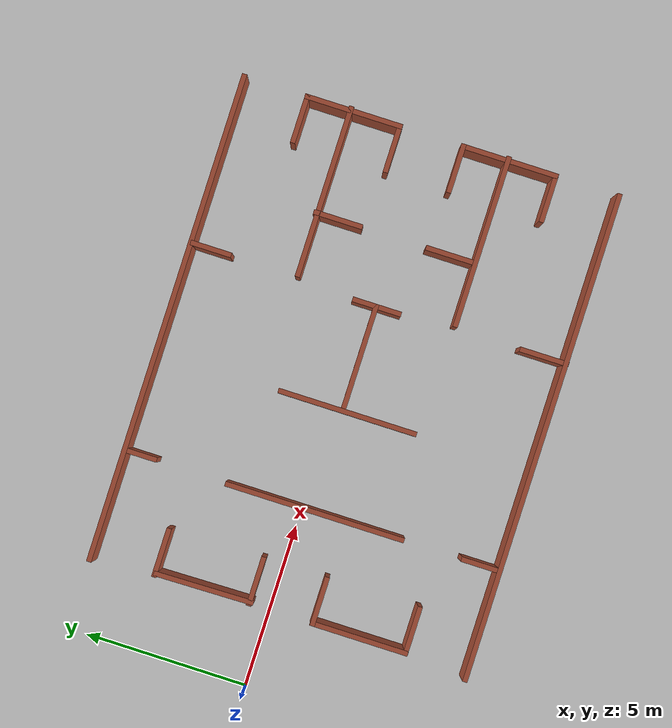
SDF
<sdf version="1.6">
 <world name="default">
  <light name="sun" type="directional">
   <pose>0 0 10 0 -0 0</pose>
   <diffuse>0.8 0.8 0.8 1</diffuse>
   <specular>0.1 0.1 0.1 1</specular>
   <attenuation>
    <range>1000</range>
    <constant>0.9</constant>
    <linear>0.01</linear>
    <quadratic>0.001</quadratic>
   </attenuation>
   <direction>-0.5 0.5 -1</direction>
  </light>
  <model name="ground_plane">
   <static>1</static>
   <link name="link">
    <collision name="collision">
     <geometry><plane><normal>0 0 1</normal><size>100 100</size></plane></geometry>
     <surface><friction><ode><mu>100</mu><mu2>50</mu2></ode></friction></surface>
    </collision>
    <visual name="visual">
     <cast_shadows>0</cast_shadows>
     <geometry><plane><normal>0 0 1</normal><size>100 100</size></plane></geometry>
     <material>
      <script><uri>file://media/materials/scripts/gazebo.material</uri><name>Gazebo/Grey</name></script>
     </material>
    </visual>
   </link>
  </model>
  <gravity>0 0 -9.8</gravity>
  <magnetic_field>6e-06 2.3e-05 -4.2e-05</magnetic_field>
  <atmosphere type="adiabatic"/>
  <physics name="default_physics" default="0" type="ode">
   <max_step_size>0.001</max_step_size>
   <real_time_factor>1</real_time_factor>
   <real_time_update_rate>1000</real_time_update_rate>
  </physics>
  <scene><ambient>0.4 0.4 0.4 1</ambient><background>0.7 0.7 0.7 1</background><shadows>1</shadows></scene>
  <spherical_coordinates>
   <surface_model>EARTH_WGS84</surface_model>
   <latitude_deg>0</latitude_deg>
   <longitude_deg>0</longitude_deg>
   <elevation>0</elevation>
   <heading_deg>0</heading_deg>
  </spherical_coordinates>
  <model name="jianjian_maze_0">
   <pose>9.77633 -0.318049 0 0 -0 0</pose>
   <link name="Wall_100">
    <collision name="Wall_100_Collision">
     <geometry><box><size>5.25 0.15 2.5</size></box></geometry>
     <pose>0 0 1.25 0 -0 0</pose>
    </collision>
    <visual name="Wall_100_Visual">
     <pose>0 0 1.25 0 -0 0</pose>
     <geometry><box><size>5.25 0.15 2.5</size></box></geometry>
     <material>
      <script><uri>file://media/materials/scripts/gazebo.material</uri><name>Gazebo/Bricks</name></script>
      <ambient>1 1 1 1</ambient>
     </material>
    </visual>
    <pose>4.90208 2.5027 0 0 -0 3.14159</pose>
   </link>
   <link name="Wall_102">
    <collision name="Wall_102_Collision">
     <geometry><box><size>5.25 0.15 2.5</size></box></geometry>
     <pose>0 0 1.25 0 -0 0</pose>
    </collision>
    <visual name="Wall_102_Visual">
     <pose>0 0 1.25 0 -0 0</pose>
     <geometry><box><size>5.25 0.15 2.5</size></box></geometry>
     <material>
      <script><uri>file://media/materials/scripts/gazebo.material</uri><name>Gazebo/Bricks</name></script>
      <ambient>1 1 1 1</ambient>
     </material>
    </visual>
    <pose>4.90208 -2.3473 0 0 -0 0</pose>
   </link>
   <link name="Wall_104">
    <collision name="Wall_104_Collision">
     <geometry><box><size>1.5 0.15 2.5</size></box></geometry>
     <pose>0 0 1.25 0 -0 0</pose>
    </collision>
    <visual name="Wall_104_Visual">
     <pose>0 0 1.25 0 -0 0</pose>
     <geometry><box><size>1.5 0.15 2.5</size></box></geometry>
     <material>
      <script><uri>file://media/materials/scripts/gazebo.material</uri><name>Gazebo/Bricks</name></script>
      <ambient>1 1 1 1</ambient>
     </material>
    </visual>
    <pose>4.24193 1.87423 0 0 0 -1.5708</pose>
   </link>
   <link name="Wall_106">
    <collision name="Wall_106_Collision">
     <geometry><box><size>1.5 0.15 2.5</size></box></geometry>
     <pose>0 0 1.25 0 -0 0</pose>
    </collision>
    <visual name="Wall_106_Visual">
     <pose>0 0 1.25 0 -0 0</pose>
     <geometry><box><size>1.5 0.15 2.5</size></box></geometry>
     <material>
      <script><uri>file://media/materials/scripts/gazebo.material</uri><name>Gazebo/Bricks</name></script>
      <ambient>1 1 1 1</ambient>
     </material>
    </visual>
    <pose>4.24193 -1.57577 0 0 0 -1.5708</pose>
   </link>
   <link name="Wall_108">
    <collision name="Wall_108_Collision">
     <geometry><box><size>1.25 0.15 2.5</size></box></geometry>
     <pose>0 0 1.25 0 -0 0</pose>
    </collision>
    <visual name="Wall_108_Visual">
     <pose>0 0 1.25 0 -0 0</pose>
     <geometry><box><size>1.25 0.15 2.5</size></box></geometry>
     <material>
      <script><uri>file://media/materials/scripts/gazebo.material</uri><name>Gazebo/Bricks</name></script>
      <ambient>1 1 1 1</ambient>
     </material>
    </visual>
    <pose>2.28793 5.16285 0 0 0 -1.5708</pose>
   </link>
   <link name="Wall_114">
    <collision name="Wall_114_Collision">
     <geometry><box><size>1.5 0.15 2.5</size></box></geometry>
     <pose>0 0 1.25 0 -0 0</pose>
    </collision>
    <visual name="Wall_114_Visual">
     <pose>0 0 1.25 0 -0 0</pose>
     <geometry><box><size>1.5 0.15 2.5</size></box></geometry>
     <material>
      <script><uri>file://media/materials/scripts/gazebo.material</uri><name>Gazebo/Bricks</name></script>
      <ambient>1 1 1 1</ambient>
     </material>
    </visual>
    <pose>2.2414 -5.10436 0 0 0 -1.5708</pose>
   </link>
   <link name="Wall_116">
    <collision name="Wall_116_Collision">
     <geometry><box><size>1.5 0.15 2.5</size></box></geometry>
     <pose>0 0 1.25 0 -0 0</pose>
    </collision>
    <visual name="Wall_116_Visual">
     <pose>0 0 1.25 0 -0 0</pose>
     <geometry><box><size>1.5 0.15 2.5</size></box></geometry>
     <material>
      <script><uri>file://media/materials/scripts/gazebo.material</uri><name>Gazebo/Bricks</name></script>
      <ambient>1 1 1 1</ambient>
     </material>
    </visual>
    <pose>2.14836 0.013269 0 0 0 -1.5708</pose>
   </link>
   <link name="Wall_118">
    <collision name="Wall_118_Collision">
     <geometry><box><size>4.25 0.15 2.5</size></box></geometry>
     <pose>0 0 1.25 0 -0 0</pose>
    </collision>
    <visual name="Wall_118_Visual">
     <pose>0 0 1.25 0 -0 0</pose>
     <geometry><box><size>4.25 0.15 2.5</size></box></geometry>
     <material>
      <script><uri>file://media/materials/scripts/gazebo.material</uri><name>Gazebo/Bricks</name></script>
      <ambient>1 1 1 1</ambient>
     </material>
    </visual>
    <pose>-1.0618 -0.105586 0 0 0 -1.5708</pose>
   </link>
   <link name="Wall_120">
    <collision name="Wall_120_Collision">
     <geometry><box><size>3.25 0.15 2.5</size></box></geometry>
     <pose>0 0 1.25 0 -0 0</pose>
    </collision>
    <visual name="Wall_120_Visual">
     <pose>0 0 1.25 0 -0 0</pose>
     <geometry><box><size>3.25 0.15 2.5</size></box></geometry>
     <material>
      <script><uri>file://media/materials/scripts/gazebo.material</uri><name>Gazebo/Bricks</name></script>
      <ambient>1 1 1 1</ambient>
     </material>
    </visual>
    <pose>0.598354 0.036933 0 0 -0 3.14159</pose>
   </link>
   <link name="Wall_122">
    <collision name="Wall_122_Collision">
     <geometry><box><size>1 0.15 2.5</size></box></geometry>
     <pose>0 0 1.25 0 -0 0</pose>
    </collision>
    <visual name="Wall_122_Visual">
     <pose>0 0 1.25 0 -0 0</pose>
     <geometry><box><size>1 0.15 2.5</size></box></geometry>
     <material>
      <script><uri>file://media/materials/scripts/gazebo.material</uri><name>Gazebo/Bricks</name></script>
      <ambient>1 1 1 1</ambient>
     </material>
    </visual>
    <pose>-4.08585 5.28785 0 0 0 -1.5708</pose>
   </link>
   <link name="Wall_126">
    <collision name="Wall_126_Collision">
     <geometry><box><size>1.25 0.15 2.5</size></box></geometry>
     <pose>0 0 1.25 0 -0 0</pose>
    </collision>
    <visual name="Wall_126_Visual">
     <pose>0 0 1.25 0 -0 0</pose>
     <geometry><box><size>1.25 0.15 2.5</size></box></geometry>
     <material>
      <script><uri>file://media/materials/scripts/gazebo.material</uri><name>Gazebo/Bricks</name></script>
      <ambient>1 1 1 1</ambient>
     </material>
    </visual>
    <pose>-4.13237 -5.21198 0 0 0 -1.5708</pose>
   </link>
   <link name="Wall_128">
    <collision name="Wall_128_Collision">
     <geometry><box><size>5.5 0.15 2.5</size></box></geometry>
     <pose>0 0 1.25 0 -0 0</pose>
    </collision>
    <visual name="Wall_128_Visual">
     <pose>0 0 1.25 0 -0 0</pose>
     <geometry><box><size>5.5 0.15 2.5</size></box></geometry>
     <material>
      <script><uri>file://media/materials/scripts/gazebo.material</uri><name>Gazebo/Bricks</name></script>
      <ambient>1 1 1 1</ambient>
     </material>
    </visual>
    <pose>-4.13237 -0.079251 0 0 0 -1.5708</pose>
   </link>
   <link name="Wall_68">
    <collision name="Wall_68_Collision">
     <geometry><box><size>1.5 0.15 2.5</size></box></geometry>
     <pose>0 0 1.25 0 -0 0</pose>
    </collision>
    <visual name="Wall_68_Visual">
     <pose>0 0 1.25 0 -0 0</pose>
     <geometry><box><size>1.5 0.15 2.5</size></box></geometry>
     <material>
      <script><uri>file://media/materials/scripts/gazebo.material</uri><name>Gazebo/Bricks</name></script>
      <ambient>1 1 1 1</ambient>
     </material>
    </visual>
    <pose>6.72292 3.82936 0 0 -0 3.14159</pose>
   </link>
   <link name="Wall_70">
    <collision name="Wall_70_Collision">
     <geometry><box><size>3 0.15 2.5</size></box></geometry>
     <pose>0 0 1.25 0 -0 0</pose>
    </collision>
    <visual name="Wall_70_Visual">
     <pose>0 0 1.25 0 -0 0</pose>
     <geometry><box><size>3 0.15 2.5</size></box></geometry>
     <material>
      <script><uri>file://media/materials/scripts/gazebo.material</uri><name>Gazebo/Bricks</name></script>
      <ambient>1 1 1 1</ambient>
     </material>
    </visual>
    <pose>7.39792 2.40436 0 0 0 -1.5708</pose>
   </link>
   <link name="Wall_71">
    <collision name="Wall_71_Collision">
     <geometry><box><size>1.5 0.15 2.5</size></box></geometry>
     <pose>0 0 1.25 0 -0 0</pose>
    </collision>
    <visual name="Wall_71_Visual">
     <pose>0 0 1.25 0 -0 0</pose>
     <geometry><box><size>1.5 0.15 2.5</size></box></geometry>
     <material>
      <script><uri>file://media/materials/scripts/gazebo.material</uri><name>Gazebo/Bricks</name></script>
      <ambient>1 1 1 1</ambient>
     </material>
    </visual>
    <pose>6.72292 0.979362 0 0 -0 3.14159</pose>
   </link>
   <link name="Wall_74">
    <collision name="Wall_74_Collision">
     <geometry><box><size>1.5 0.15 2.5</size></box></geometry>
     <pose>0 0 1.25 0 -0 0</pose>
    </collision>
    <visual name="Wall_74_Visual">
     <pose>0 0 1.25 0 -0 0</pose>
     <geometry><box><size>1.5 0.15 2.5</size></box></geometry>
     <material>
      <script><uri>file://media/materials/scripts/gazebo.material</uri><name>Gazebo/Bricks</name></script>
      <ambient>1 1 1 1</ambient>
     </material>
    </visual>
    <pose>6.72292 -0.970638 0 0 -0 3.14159</pose>
   </link>
   <link name="Wall_76">
    <collision name="Wall_76_Collision">
     <geometry><box><size>3 0.15 2.5</size></box></geometry>
     <pose>0 0 1.25 0 -0 0</pose>
    </collision>
    <visual name="Wall_76_Visual">
     <pose>0 0 1.25 0 -0 0</pose>
     <geometry><box><size>3 0.15 2.5</size></box></geometry>
     <material>
      <script><uri>file://media/materials/scripts/gazebo.material</uri><name>Gazebo/Bricks</name></script>
      <ambient>1 1 1 1</ambient>
     </material>
    </visual>
    <pose>7.39792 -2.39564 0 0 0 -1.5708</pose>
   </link>
   <link name="Wall_77">
    <collision name="Wall_77_Collision">
     <geometry><box><size>1.5 0.15 2.5</size></box></geometry>
     <pose>0 0 1.25 0 -0 0</pose>
    </collision>
    <visual name="Wall_77_Visual">
     <pose>0 0 1.25 0 -0 0</pose>
     <geometry><box><size>1.5 0.15 2.5</size></box></geometry>
     <material>
      <script><uri>file://media/materials/scripts/gazebo.material</uri><name>Gazebo/Bricks</name></script>
      <ambient>1 1 1 1</ambient>
     </material>
    </visual>
    <pose>6.72292 -3.82064 0 0 -0 3.14159</pose>
   </link>
   <link name="Wall_80">
    <collision name="Wall_80_Collision">
     <geometry><box><size>15 0.15 2.5</size></box></geometry>
     <pose>0 0 1.25 0 -0 0</pose>
    </collision>
    <visual name="Wall_80_Visual">
     <pose>0 0 1.25 0 -0 0</pose>
     <geometry><box><size>15 0.15 2.5</size></box></geometry>
     <material>
      <script><uri>file://media/materials/scripts/gazebo.material</uri><name>Gazebo/Bricks</name></script>
      <ambient>1 1 1 1</ambient>
     </material>
    </visual>
    <pose>-0.027081 -5.77064 0 0 -0 3.14159</pose>
   </link>
   <link name="Wall_86">
    <collision name="Wall_86_Collision">
     <geometry><box><size>3.0469 0.15 2.5</size></box></geometry>
     <pose>0 0 1.25 0 -0 0</pose>
    </collision>
    <visual name="Wall_86_Visual">
     <pose>0 0 1.25 0 -0 0</pose>
     <geometry><box><size>3.0469 0.15 2.5</size></box></geometry>
     <material>
      <script><uri>file://media/materials/scripts/gazebo.material</uri><name>Gazebo/Bricks</name></script>
      <ambient>1 1 1 1</ambient>
     </material>
    </visual>
    <pose>-7.23836 2.34064 0 0 0 -1.55474</pose>
   </link>
   <link name="Wall_87">
    <collision name="Wall_87_Collision">
     <geometry><box><size>1.5 0.15 2.5</size></box></geometry>
     <pose>0 0 1.25 0 -0 0</pose>
    </collision>
    <visual name="Wall_87_Visual">
     <pose>0 0 1.25 0 -0 0</pose>
     <geometry><box><size>1.5 0.15 2.5</size></box></geometry>
     <material>
      <script><uri>file://media/materials/scripts/gazebo.material</uri><name>Gazebo/Bricks</name></script>
      <ambient>1 1 1 1</ambient>
     </material>
    </visual>
    <pose>-6.58056 0.932838 0 0 -0 0</pose>
   </link>
   <link name="Wall_89">
    <collision name="Wall_89_Collision">
     <geometry><box><size>1.5 0.15 2.5</size></box></geometry>
     <pose>0 0 1.25 0 -0 0</pose>
    </collision>
    <visual name="Wall_89_Visual">
     <pose>0 0 1.25 0 -0 0</pose>
     <geometry><box><size>1.5 0.15 2.5</size></box></geometry>
     <material>
      <script><uri>file://media/materials/scripts/gazebo.material</uri><name>Gazebo/Bricks</name></script>
      <ambient>1 1 1 1</ambient>
     </material>
    </visual>
    <pose>-6.62708 3.82936 0 0 -0 0</pose>
   </link>
   <link name="Wall_9">
    <collision name="Wall_9_Collision">
     <geometry><box><size>15 0.15 2.5</size></box></geometry>
     <pose>0 0 1.25 0 -0 0</pose>
    </collision>
    <visual name="Wall_9_Visual">
     <pose>0 0 1.25 0 -0 0</pose>
     <geometry><box><size>15 0.15 2.5</size></box></geometry>
     <material>
      <script><uri>file://media/materials/scripts/gazebo.material</uri><name>Gazebo/Bricks</name></script>
      <ambient>1 1 1 1</ambient>
     </material>
    </visual>
    <pose>-0.027081 5.77936 0 0 -0 3.14159</pose>
   </link>
   <link name="Wall_93">
    <collision name="Wall_93_Collision">
     <geometry><box><size>1.5 0.15 2.5</size></box></geometry>
     <pose>0 0 1.25 0 -0 0</pose>
    </collision>
    <visual name="Wall_93_Visual">
     <pose>0 0 1.25 0 -0 0</pose>
     <geometry><box><size>1.5 0.15 2.5</size></box></geometry>
     <material>
      <script><uri>file://media/materials/scripts/gazebo.material</uri><name>Gazebo/Bricks</name></script>
      <ambient>1 1 1 1</ambient>
     </material>
    </visual>
    <pose>-6.58056 -1.01716 0 0 -0 0</pose>
   </link>
   <link name="Wall_95">
    <collision name="Wall_95_Collision">
     <geometry><box><size>3 0.15 2.5</size></box></geometry>
     <pose>0 0 1.25 0 -0 0</pose>
    </collision>
    <visual name="Wall_95_Visual">
     <pose>0 0 1.25 0 -0 0</pose>
     <geometry><box><size>3 0.15 2.5</size></box></geometry>
     <material>
      <script><uri>file://media/materials/scripts/gazebo.material</uri><name>Gazebo/Bricks</name></script>
      <ambient>1 1 1 1</ambient>
     </material>
    </visual>
    <pose>-7.25556 -2.44216 0 0 0 -1.5708</pose>
   </link>
   <link name="Wall_96">
    <collision name="Wall_96_Collision">
     <geometry><box><size>1.5 0.15 2.5</size></box></geometry>
     <pose>0 0 1.25 0 -0 0</pose>
    </collision>
    <visual name="Wall_96_Visual">
     <pose>0 0 1.25 0 -0 0</pose>
     <geometry><box><size>1.5 0.15 2.5</size></box></geometry>
     <material>
      <script><uri>file://media/materials/scripts/gazebo.material</uri><name>Gazebo/Bricks</name></script>
      <ambient>1 1 1 1</ambient>
     </material>
    </visual>
    <pose>-6.58056 -3.86716 0 0 -0 0</pose>
   </link>
   <static>1</static>
  </model>
 </world>
</sdf>
